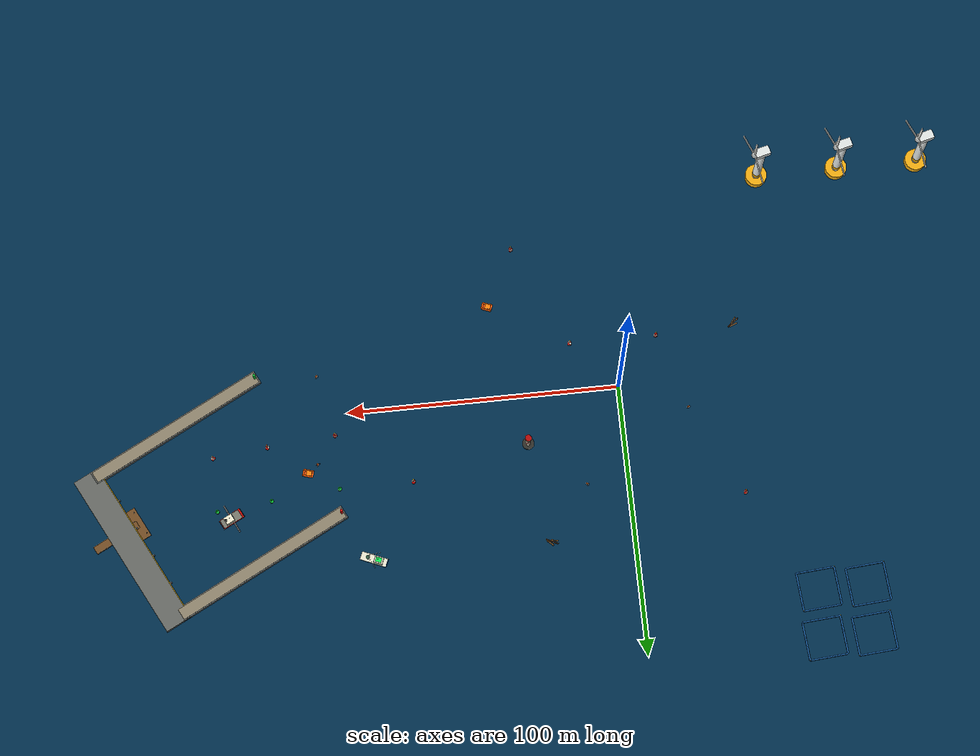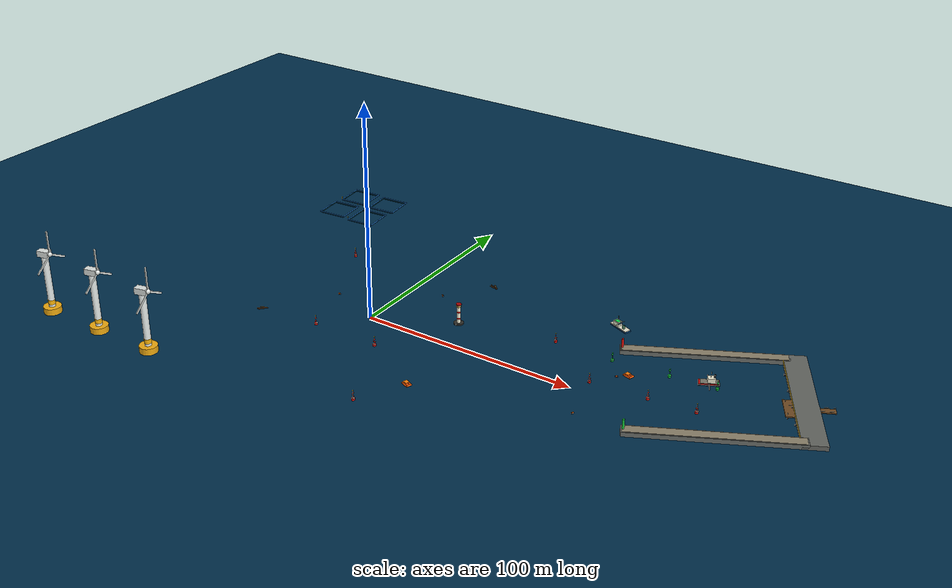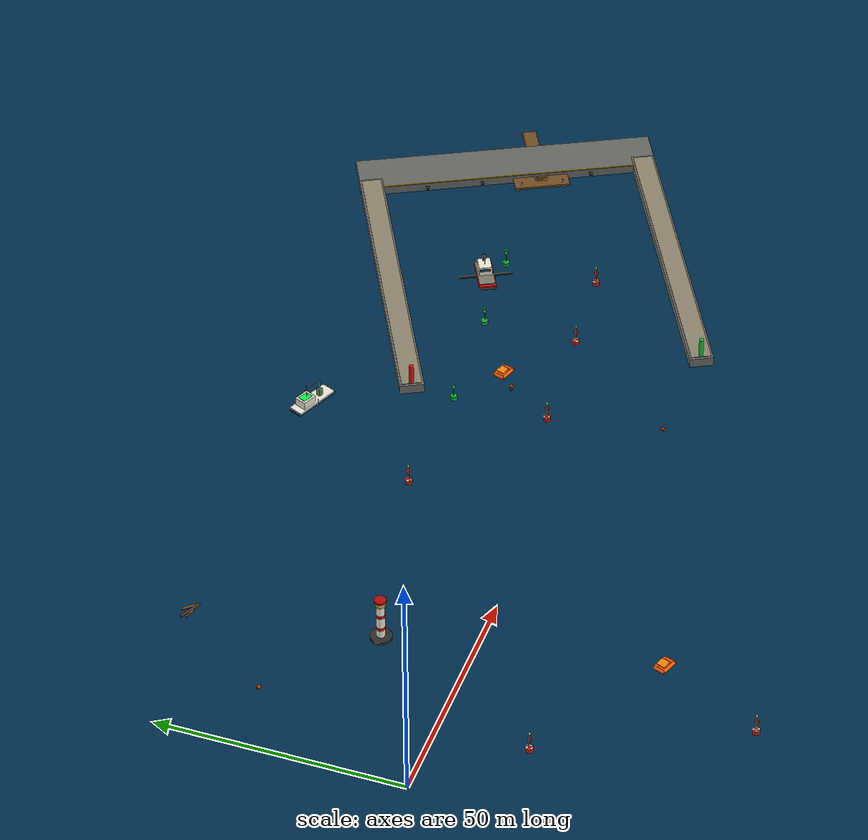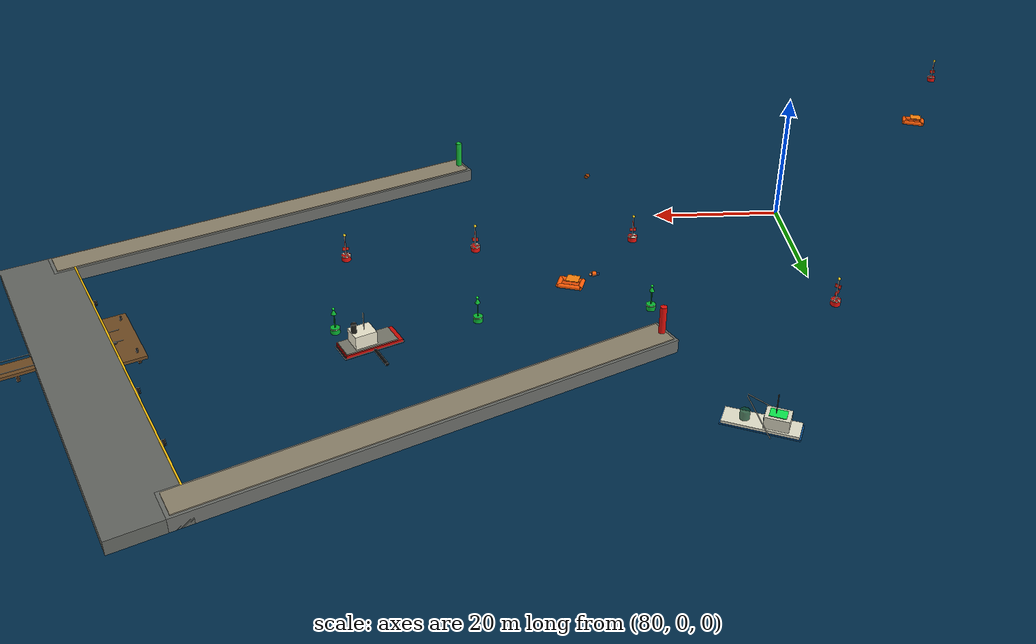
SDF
<sdf version="1.10">
 <world name="default">
  <plugin filename="gz-sim-physics-system" name="gz::sim::systems::Physics"/>
  <plugin filename="gz-sim-user-commands-system" name="gz::sim::systems::UserCommands"/>
  <plugin filename="gz-sim-scene-broadcaster-system" name="gz::sim::systems::SceneBroadcaster"/>
  <plugin filename="gz-sim-contact-system" name="gz::sim::systems::Contact"/>
  <plugin filename="gz-sim-imu-system" name="gz::sim::systems::Imu"/>
  <plugin filename="gz-sim-air-pressure-system" name="gz::sim::systems::AirPressure"/>
  <plugin filename="gz-sim-air-speed-system" name="gz::sim::systems::AirSpeed"/>
  <plugin filename="gz-sim-apply-link-wrench-system" name="gz::sim::systems::ApplyLinkWrench"/>
  <plugin filename="gz-sim-navsat-system" name="gz::sim::systems::NavSat"/>
  <plugin filename="gz-sim-magnetometer-system" name="gz::sim::systems::Magnetometer"/>
  <plugin filename="gz-sim-sensors-system" name="gz::sim::systems::Sensors">
   <render_engine>ogre2</render_engine>
  </plugin>
  <plugin filename="gz-sim-particle-emitter-system" name="gz::sim::systems::ParticleEmitter"/>
  <plugin filename="gz-sim-wind-effects-system" name="gz::sim::systems::WindEffects">
   <force_approximation_scaling_factor>0.35</force_approximation_scaling_factor>
   <horizontal>
    <magnitude>
     <time_for_rise>12</time_for_rise>
     <sin><amplitude_percent>0.08</amplitude_percent><period>45</period></sin>
     <noise type="gaussian"><mean>0</mean><stddev>0.0004</stddev></noise>
    </magnitude>
    <direction>
     <time_for_rise>20</time_for_rise>
     <sin><amplitude>6</amplitude><period>60</period></sin>
     <noise type="gaussian"><mean>0</mean><stddev>0.025</stddev></noise>
    </direction>
   </horizontal>
   <vertical><noise type="gaussian"><mean>0</mean><stddev>0.015</stddev></noise></vertical>
  </plugin>
  <physics type="ode">
   <max_step_size>0.0040000000000000001</max_step_size>
   <real_time_factor>1</real_time_factor>
   <real_time_update_rate>250</real_time_update_rate>
  </physics>
  <gravity>0 0 -9.8000000000000007</gravity>
  <magnetic_field>6.0000000000000002e-06 2.3e-05 -4.1999999999999998e-05</magnetic_field>
  <atmosphere type="adiabatic"/>
  <wind><linear_velocity>4 1.5 0</linear_velocity></wind>
  <scene>
   <grid>false</grid>
   <ambient>0.400000006 0.400000006 0.400000006 1</ambient>
   <background>0.699999988 0.699999988 0.699999988 1</background>
   <shadows>true</shadows>
   <fog>
    <type>linear</type>
    <color>0.72 0.78 0.8 1</color>
    <start>90</start>
    <end>420</end>
    <density>0.003</density>
   </fog>
  </scene>
  <spherical_coordinates>
   <surface_model>EARTH_WGS84</surface_model>
   <world_frame_orientation>ENU</world_frame_orientation>
   <latitude_deg>47.397971057728974</latitude_deg>
   <longitude_deg>8.5461637398001464</longitude_deg>
   <elevation>0</elevation>
   <heading_deg>0</heading_deg>
  </spherical_coordinates>
  <model name="ocean_plane">
   <static>true</static>
   <link name="ocean_link">
    <visual name="ocean_visual">
     <pose>0 0 -0.02 0 0 0</pose>
     <geometry><plane><normal>0 0 1</normal><size>1000 1000</size></plane></geometry>
     <material>
      <ambient>0 0.08 0.16 0.45</ambient>
      <diffuse>0 0.18 0.3 0.45</diffuse>
      <specular>0.03 0.05 0.06 1</specular>
     </material>
    </visual>
    <collision name="ocean_collision">
     <geometry><plane><normal>0 0 1</normal><size>1000 1000</size></plane></geometry>
    </collision>
    <inertial>
     <mass>1</mass>
     <inertia><ixx>1</ixx><ixy>0</ixy><ixz>0</ixz><iyy>1</iyy><iyz>0</iyz><izz>1</izz></inertia>
    </inertial>
   </link>
  </model>
  <include>
   <uri>model://medium_buoy</uri>
   <name>medium_buoy_west_channel</name>
   <pose>-42 44 0 0 0 0.25</pose>
  </include>
  <include>
   <uri>model://medium_buoy</uri>
   <name>medium_buoy_south_channel</name>
   <pose>34 -56 0 0 0 -0.35</pose>
  </include>
  <include>
   <uri>model://medium_buoy</uri>
   <name>medium_buoy_east_channel</name>
   <pose>78 28 0 0 0 0.7</pose>
  </include>
  <include>
   <uri>model://medium_buoy</uri>
   <name>medium_buoy_slalom_port</name>
   <pose>-16 -18 0 0 0 0</pose>
  </include>
  <include>
   <uri>model://medium_buoy</uri>
   <name>medium_buoy_slalom_starboard</name>
   <pose>16 -18 0 0 0 0</pose>
  </include>
  <include><uri>model://medium_buoy</uri><name>approach_port_outer</name><pose>105 8 0 0 0 0</pose></include>
  <include>
   <uri>model://green_channel_buoy</uri>
   <name>approach_starboard_outer</name>
   <pose>105 28 0 0 0 0</pose>
  </include>
  <include><uri>model://medium_buoy</uri><name>approach_port_middle</name><pose>130 10 0 0 0 0</pose></include>
  <include>
   <uri>model://green_channel_buoy</uri>
   <name>approach_starboard_middle</name>
   <pose>130 30 0 0 0 0</pose>
  </include>
  <include><uri>model://medium_buoy</uri><name>approach_port_inner</name><pose>150 12 0 0 0 0</pose></include>
  <include>
   <uri>model://green_channel_buoy</uri>
   <name>approach_starboard_inner</name>
   <pose>150 32 0 0 0 0</pose>
  </include>
  <include>
   <uri>model://aquaculture_cage</uri>
   <name>aquaculture_cage_01</name>
   <pose>-82 82 0 0 0 0.08</pose>
  </include>
  <include>
   <uri>model://aquaculture_cage</uri>
   <name>aquaculture_cage_02</name>
   <pose>-64 82 0 0 0 0.08</pose>
  </include>
  <include>
   <uri>model://aquaculture_cage</uri>
   <name>aquaculture_cage_03</name>
   <pose>-82 100 0 0 0 0.08</pose>
  </include>
  <include>
   <uri>model://aquaculture_cage</uri>
   <name>aquaculture_cage_04</name>
   <pose>-64 100 0 0 0 0.08</pose>
  </include>
  <include>
   <uri>model://floating_barrel</uri>
   <name>floating_barrel_01</name>
   <pose>-25 10 0 0 0 0.35</pose>
  </include>
  <include>
   <uri>model://floating_barrel</uri>
   <name>floating_barrel_02</name>
   <pose>15 35 0 0 0 -0.7</pose>
  </include>
  <include>
   <uri>model://floating_barrel</uri>
   <name>floating_barrel_03</name>
   <pose>110 -15 0 0 0 1.1</pose>
  </include>
  <include><uri>model://life_raft</uri><name>abandoned_life_raft</name><pose>45 -35 0 0 0 -0.35</pose></include>
  <include><uri>model://driftwood</uri><name>driftwood_01</name><pose>-45 -20 0 0 0 0.65</pose></include>
  <include><uri>model://driftwood</uri><name>driftwood_02</name><pose>30 55 0 0 0 -0.45</pose></include>
  <include>
   <uri>model://marina_pier</uri>
   <name>southwest_marina_pier</name>
   <pose>195 42 0 0 0 3.6166</pose>
  </include>
  <include>
   <uri>model://offshore_wind_turbine</uri>
   <name>wind_turbine_west</name>
   <pose>-120 -75 0 0 0 0.25</pose>
  </include>
  <include>
   <uri>model://offshore_wind_turbine</uri>
   <name>wind_turbine_center</name>
   <pose>-90 -75 0 0 0 0.25</pose>
  </include>
  <include>
   <uri>model://offshore_wind_turbine</uri>
   <name>wind_turbine_east</name>
   <pose>-60 -75 0 0 0 0.25</pose>
  </include>
  <include>
   <uri>model://harbor_breakwater</uri>
   <name>southwest_breakwater_harbor</name>
   <pose>180 42 0 0 0 3.6166</pose>
  </include>
  <include><uri>model://harbor_tug</uri><name>rescue_harbor_tug</name><pose>145 35 0 0 0 3.6166</pose></include>
  <include>
   <uri>model://fishing_boat</uri>
   <name>coastal_fishing_boat</name>
   <pose>95 55 0 0 0 -0.4</pose>
  </include>
  <include>
   <uri>model://person_overboard</uri>
   <name>rescue_casualty</name>
   <pose>112 18 0 0 0 0.2</pose>
  </include>
  <include><uri>model://life_raft</uri><name>rescue_life_raft</name><pose>116 21 0 0 0 -0.3</pose></include>
  <plugin filename="libDroneDeckFollower.so" name="gz::sim::systems::DroneDeckFollower">
   <boat_name>landing_boat</boat_name>
   <drone_name>x500_0</drone_name>
   <deck_offset>-0.92 0 0.43 0 0 0</deck_offset>
   <release_topic>/model/x500_0/release_from_deck</release_topic>
   <relock_duration>4.0</relock_duration>
   <release_vertical_speed>0.9</release_vertical_speed>
   <release_after>1000000</release_after>
   <initially_released>true</initially_released>
  </plugin>
  <model name="navigation_lighthouse">
   <static>true</static>
   <pose>35 18 0 0 0 0</pose>
   <link name="lighthouse_link">
    <collision name="base_collision">
     <pose>0 0 0.3 0 0 0</pose>
     <geometry><cylinder><radius>2.2</radius><length>0.6</length></cylinder></geometry>
    </collision>
    <visual name="base_visual">
     <pose>0 0 0.3 0 0 0</pose>
     <geometry><cylinder><radius>2.2</radius><length>0.6</length></cylinder></geometry>
     <material>
      <ambient>0.12 0.12 0.12 1</ambient>
      <diffuse>0.18 0.18 0.16 1</diffuse>
      <specular>0.05 0.05 0.05 1</specular>
     </material>
    </visual>
    <collision name="tower_collision">
     <pose>0 0 4.4 0 0 0</pose>
     <geometry><cylinder><radius>0.85</radius><length>8.2</length></cylinder></geometry>
    </collision>
    <visual name="tower_white_visual">
     <pose>0 0 4.4 0 0 0</pose>
     <geometry><cylinder><radius>0.85</radius><length>8.2</length></cylinder></geometry>
     <material>
      <ambient>0.85 0.83 0.76 1</ambient>
      <diffuse>0.95 0.93 0.84 1</diffuse>
      <specular>0.2 0.2 0.18 1</specular>
     </material>
    </visual>
    <visual name="red_band_lower_visual">
     <pose>0 0 2.7 0 0 0</pose>
     <geometry><cylinder><radius>0.88</radius><length>0.65</length></cylinder></geometry>
     <material>
      <ambient>0.55 0.04 0.03 1</ambient>
      <diffuse>0.85 0.06 0.04 1</diffuse>
      <specular>0.15 0.03 0.03 1</specular>
     </material>
    </visual>
    <visual name="red_band_upper_visual">
     <pose>0 0 5.8 0 0 0</pose>
     <geometry><cylinder><radius>0.88</radius><length>0.65</length></cylinder></geometry>
     <material>
      <ambient>0.55 0.04 0.03 1</ambient>
      <diffuse>0.85 0.06 0.04 1</diffuse>
      <specular>0.15 0.03 0.03 1</specular>
     </material>
    </visual>
    <visual name="lantern_room_visual">
     <pose>0 0 8.8 0 0 0</pose>
     <geometry><cylinder><radius>1.05</radius><length>0.9</length></cylinder></geometry>
     <material>
      <ambient>0.95 0.82 0.32 0.85</ambient>
      <diffuse>1 0.88 0.4 0.85</diffuse>
      <specular>1 0.95 0.7 1</specular>
     </material>
    </visual>
    <visual name="roof_visual">
     <pose>0 0 9.55 0 0 0</pose>
     <geometry><cylinder><radius>1.2</radius><length>0.45</length></cylinder></geometry>
     <material>
      <ambient>0.45 0.02 0.02 1</ambient>
      <diffuse>0.7 0.03 0.03 1</diffuse>
      <specular>0.18 0.04 0.04 1</specular>
     </material>
    </visual>
    <light name="beacon_light" type="point">
     <pose>0 0 8.95 0 0 0</pose>
     <cast_shadows>false</cast_shadows>
     <intensity>3</intensity>
     <diffuse>1 0.86 0.35 1</diffuse>
     <specular>1 0.9 0.55 1</specular>
     <attenuation>
      <range>80</range>
      <constant>0.6</constant>
      <linear>0.02</linear>
      <quadratic>0.001</quadratic>
     </attenuation>
    </light>
   </link>
  </model>
  <light name="directionallight" type="directional">
   <pose>3.6650413048508694 0.062467871162392719 2 0 0 0</pose>
   <intensity>1</intensity>
   <direction>0 0 -1</direction>
   <diffuse>0.800000012 0.800000012 0.800000012 1</diffuse>
   <specular>0.200000003 0.200000003 0.200000003 1</specular>
   <attenuation>
    <range>1000</range>
    <linear>0.01</linear>
    <constant>0.90000000000000002</constant>
    <quadratic>0.001</quadratic>
   </attenuation>
   <spot><inner_angle>0</inner_angle><outer_angle>0</outer_angle><falloff>0</falloff></spot>
  </light>
 </world>
</sdf>

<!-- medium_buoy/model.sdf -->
<sdf version="1.8">
  <model name="medium_buoy">
    <link name="body">
      <inertial>
        <mass>140</mass>
        <inertia><ixx>65</ixx><iyy>65</iyy><izz>22</izz></inertia>
      </inertial>
      <collision name="base_collision">
        <pose>0 0 0.45 0 0 0</pose>
        <geometry>
          <cylinder>
            <radius>0.7</radius>
            <length>0.9</length>
          </cylinder>
        </geometry>
      </collision>

      <collision name="mast_collision">
        <pose>0 0 2.55 0 0 0</pose>
        <geometry>
          <cylinder>
            <radius>0.11</radius>
            <length>3.3</length>
          </cylinder>
        </geometry>
      </collision>

      <collision name="daymark_lower_collision">
        <pose>0 0 2.0 0 0 0</pose>
        <geometry>
          <box>
            <size>1.05 0.12 0.65</size>
          </box>
        </geometry>
      </collision>

      <collision name="daymark_upper_collision">
        <pose>0 0 3.1 0 0 1.5708</pose>
        <geometry>
          <box>
            <size>1.05 0.12 0.65</size>
          </box>
        </geometry>
      </collision>

      <visual name="base_float">
        <pose>0 0 0.45 0 0 0</pose>
        <geometry>
          <cylinder>
            <radius>0.72</radius>
            <length>0.9</length>
          </cylinder>
        </geometry>
        <material>
          <ambient>0.65 0.05 0.04 1</ambient>
          <diffuse>0.92 0.07 0.05 1</diffuse>
          <specular>0.25 0.04 0.04 1</specular>
        </material>
      </visual>

      <visual name="white_band">
        <pose>0 0 0.82 0 0 0</pose>
        <geometry>
          <cylinder>
            <radius>0.73</radius>
            <length>0.16</length>
          </cylinder>
        </geometry>
        <material>
          <ambient>0.92 0.9 0.82 1</ambient>
          <diffuse>1 0.98 0.88 1</diffuse>
          <specular>0.45 0.45 0.4 1</specular>
        </material>
      </visual>

      <visual name="tower_mast">
        <pose>0 0 2.55 0 0 0</pose>
        <geometry>
          <cylinder>
            <radius>0.08</radius>
            <length>3.3</length>
          </cylinder>
        </geometry>
        <material>
          <ambient>0.04 0.04 0.04 1</ambient>
          <diffuse>0.06 0.06 0.06 1</diffuse>
          <specular>0.2 0.2 0.2 1</specular>
        </material>
      </visual>

      <visual name="daymark_lower">
        <pose>0 0 2.0 0 0 0</pose>
        <geometry>
          <box>
            <size>0.95 0.08 0.55</size>
          </box>
        </geometry>
        <material>
          <ambient>0.85 0.1 0.06 1</ambient>
          <diffuse>1 0.15 0.08 1</diffuse>
          <specular>0.3 0.05 0.03 1</specular>
        </material>
      </visual>

      <visual name="daymark_upper">
        <pose>0 0 3.1 0 0 1.5708</pose>
        <geometry>
          <box>
            <size>0.95 0.08 0.55</size>
          </box>
        </geometry>
        <material>
          <ambient>0.85 0.1 0.06 1</ambient>
          <diffuse>1 0.15 0.08 1</diffuse>
          <specular>0.3 0.05 0.03 1</specular>
        </material>
      </visual>

      <visual name="top_beacon">
        <pose>0 0 4.35 0 0 0</pose>
        <geometry>
          <sphere>
            <radius>0.22</radius>
          </sphere>
        </geometry>
        <material>
          <ambient>1 0.78 0.1 1</ambient>
          <diffuse>1 0.86 0.15 1</diffuse>
          <specular>1 0.9 0.35 1</specular>
        </material>
      </visual>

      <light name="buoy_light" type="point">
        <pose>0 0 4.35 0 0 0</pose>
        <cast_shadows>false</cast_shadows>
        <intensity>1.2</intensity>
        <diffuse>1 0.78 0.1 1</diffuse>
        <specular>1 0.86 0.25 1</specular>
        <attenuation>
          <range>25</range>
          <constant>0.7</constant>
          <linear>0.04</linear>
          <quadratic>0.002</quadratic>
        </attenuation>
      </light>
    </link>
    <plugin filename="libBoatWaveFollower.so" name="gz::sim::systems::BoatWaveFollower">
      <mean_z>0</mean_z><heave_amplitude>0.08</heave_amplitude>
      <roll_amplitude>0.045</roll_amplitude><pitch_amplitude>0.038</pitch_amplitude>
      <primary_frequency>0.9</primary_frequency><secondary_frequency>1.45</secondary_frequency>
      <wave_number_x>0.2</wave_number_x><wave_number_y>0.16</wave_number_y>
    </plugin>
  </model>
</sdf>

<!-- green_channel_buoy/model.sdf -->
<sdf version="1.10">
  <model name="green_channel_buoy">
    <link name="body">
      <inertial><mass>140</mass><inertia><ixx>65</ixx><iyy>65</iyy><izz>22</izz></inertia></inertial>
      <collision name="float_collision"><pose>0 0 0.45 0 0 0</pose><geometry><cylinder><radius>0.65</radius><length>0.9</length></cylinder></geometry></collision>
      <collision name="mast_collision"><pose>0 0 2.15 0 0 0</pose><geometry><cylinder><radius>0.1</radius><length>2.7</length></cylinder></geometry></collision>
      <visual name="float"><pose>0 0 0.45 0 0 0</pose><geometry><cylinder><radius>0.68</radius><length>0.9</length></cylinder></geometry><material><ambient>0.02 0.42 0.12 1</ambient><diffuse>0.03 0.72 0.2 1</diffuse><specular>0.2 0.3 0.2 1</specular></material></visual>
      <visual name="reflective_band"><pose>0 0 0.78 0 0 0</pose><geometry><cylinder><radius>0.69</radius><length>0.14</length></cylinder></geometry><material><ambient>0.85 0.88 0.75 1</ambient><diffuse>1 1 0.86 1</diffuse><emissive>0.15 0.15 0.1 1</emissive></material></visual>
      <visual name="mast"><pose>0 0 2.15 0 0 0</pose><geometry><cylinder><radius>0.075</radius><length>2.7</length></cylinder></geometry><material><ambient>0.02 0.25 0.07 1</ambient><diffuse>0.03 0.5 0.12 1</diffuse></material></visual>
      <visual name="topmark"><pose>0 0 3.45 0 0 0</pose><geometry><cone><radius>0.38</radius><length>0.75</length></cone></geometry><material><ambient>0.02 0.36 0.1 1</ambient><diffuse>0.03 0.68 0.18 1</diffuse></material></visual>
      <visual name="lantern"><pose>0 0 3.95 0 0 0</pose><geometry><sphere><radius>0.18</radius></sphere></geometry><material><ambient>0.08 0.8 0.2 1</ambient><diffuse>0.1 1 0.25 1</diffuse><emissive>0.05 0.8 0.16 1</emissive></material></visual>
      <light name="green_light" type="point"><pose>0 0 3.95 0 0 0</pose><cast_shadows>false</cast_shadows><intensity>1.4</intensity><diffuse>0.08 1 0.22 1</diffuse><specular>0.1 1 0.3 1</specular><attenuation><range>28</range><constant>0.7</constant><linear>0.04</linear><quadratic>0.002</quadratic></attenuation></light>
    </link>
    <plugin filename="libBoatWaveFollower.so" name="gz::sim::systems::BoatWaveFollower"><mean_z>0</mean_z><heave_amplitude>0.08</heave_amplitude><roll_amplitude>0.045</roll_amplitude><pitch_amplitude>0.038</pitch_amplitude><primary_frequency>0.9</primary_frequency><secondary_frequency>1.45</secondary_frequency><wave_number_x>0.2</wave_number_x><wave_number_y>0.16</wave_number_y></plugin>
  </model>
</sdf>

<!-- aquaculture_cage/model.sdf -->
<sdf version="1.10">
  <model name="aquaculture_cage">
    <link name="cage">
      <inertial><mass>450</mass><inertia><ixx>5500</ixx><iyy>5500</iyy><izz>8200</izz></inertia></inertial>
      <collision name="north_float_collision"><pose>0 7 0.25 0 1.5708 0</pose><geometry><cylinder><radius>0.3</radius><length>14</length></cylinder></geometry></collision>
      <collision name="south_float_collision"><pose>0 -7 0.25 0 1.5708 0</pose><geometry><cylinder><radius>0.3</radius><length>14</length></cylinder></geometry></collision>
      <collision name="east_float_collision"><pose>7 0 0.25 1.5708 0 0</pose><geometry><cylinder><radius>0.3</radius><length>14</length></cylinder></geometry></collision>
      <collision name="west_float_collision"><pose>-7 0 0.25 1.5708 0 0</pose><geometry><cylinder><radius>0.3</radius><length>14</length></cylinder></geometry></collision>
      <visual name="north_float"><pose>0 7 0.25 0 1.5708 0</pose><geometry><cylinder><radius>0.32</radius><length>14</length></cylinder></geometry><material><ambient>0.08 0.2 0.34 1</ambient><diffuse>0.1 0.38 0.65 1</diffuse><specular>0.3 0.35 0.4 1</specular></material></visual>
      <visual name="south_float"><pose>0 -7 0.25 0 1.5708 0</pose><geometry><cylinder><radius>0.32</radius><length>14</length></cylinder></geometry><material><ambient>0.08 0.2 0.34 1</ambient><diffuse>0.1 0.38 0.65 1</diffuse></material></visual>
      <visual name="east_float"><pose>7 0 0.25 1.5708 0 0</pose><geometry><cylinder><radius>0.32</radius><length>14</length></cylinder></geometry><material><ambient>0.08 0.2 0.34 1</ambient><diffuse>0.1 0.38 0.65 1</diffuse></material></visual>
      <visual name="west_float"><pose>-7 0 0.25 1.5708 0 0</pose><geometry><cylinder><radius>0.32</radius><length>14</length></cylinder></geometry><material><ambient>0.08 0.2 0.34 1</ambient><diffuse>0.1 0.38 0.65 1</diffuse></material></visual>
      <visual name="net_bottom"><pose>0 0 -3.8 0 0 0</pose><geometry><box><size>13.5 13.5 0.03</size></box></geometry><material><ambient>0.02 0.14 0.11 0.35</ambient><diffuse>0.03 0.3 0.22 0.35</diffuse></material></visual>
      <visual name="net_north"><pose>0 6.75 -1.8 0 0 0</pose><geometry><box><size>13.5 0.03 4</size></box></geometry><material><ambient>0.02 0.16 0.12 0.38</ambient><diffuse>0.03 0.34 0.24 0.38</diffuse></material></visual>
      <visual name="net_south"><pose>0 -6.75 -1.8 0 0 0</pose><geometry><box><size>13.5 0.03 4</size></box></geometry><material><ambient>0.02 0.16 0.12 0.38</ambient><diffuse>0.03 0.34 0.24 0.38</diffuse></material></visual>
      <visual name="net_east"><pose>6.75 0 -1.8 0 0 0</pose><geometry><box><size>0.03 13.5 4</size></box></geometry><material><ambient>0.02 0.16 0.12 0.38</ambient><diffuse>0.03 0.34 0.24 0.38</diffuse></material></visual>
      <visual name="net_west"><pose>-6.75 0 -1.8 0 0 0</pose><geometry><box><size>0.03 13.5 4</size></box></geometry><material><ambient>0.02 0.16 0.12 0.38</ambient><diffuse>0.03 0.34 0.24 0.38</diffuse></material></visual>
      <visual name="corner_marker_ne"><pose>7 7 1.05 0 0 0</pose><geometry><cylinder><radius>0.09</radius><length>1.5</length></cylinder></geometry><material><ambient>0.85 0.55 0.02 1</ambient><diffuse>1 0.72 0.05 1</diffuse></material></visual>
      <visual name="corner_marker_sw"><pose>-7 -7 1.05 0 0 0</pose><geometry><cylinder><radius>0.09</radius><length>1.5</length></cylinder></geometry><material><ambient>0.85 0.55 0.02 1</ambient><diffuse>1 0.72 0.05 1</diffuse></material></visual>
      <light name="cage_light_ne" type="point"><pose>7 7 1.8 0 0 0</pose><cast_shadows>false</cast_shadows><intensity>0.8</intensity><diffuse>1 0.72 0.08 1</diffuse><attenuation><range>18</range><constant>0.8</constant><linear>0.06</linear><quadratic>0.003</quadratic></attenuation></light>
      <light name="cage_light_sw" type="point"><pose>-7 -7 1.8 0 0 0</pose><cast_shadows>false</cast_shadows><intensity>0.8</intensity><diffuse>1 0.72 0.08 1</diffuse><attenuation><range>18</range><constant>0.8</constant><linear>0.06</linear><quadratic>0.003</quadratic></attenuation></light>
    </link>
    <plugin filename="libBoatWaveFollower.so" name="gz::sim::systems::BoatWaveFollower"><mean_z>0</mean_z><heave_amplitude>0.05</heave_amplitude><roll_amplitude>0.012</roll_amplitude><pitch_amplitude>0.012</pitch_amplitude><primary_frequency>0.75</primary_frequency><secondary_frequency>1.2</secondary_frequency><wave_number_x>0.12</wave_number_x><wave_number_y>0.1</wave_number_y></plugin>
  </model>
</sdf>

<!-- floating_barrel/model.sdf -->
<sdf version="1.10"><model name="floating_barrel"><link name="barrel">
  <inertial><mass>35</mass><inertia><ixx>4</ixx><iyy>8</iyy><izz>8</izz></inertia></inertial>
  <collision name="collision"><pose>0 0 0 0 1.5708 0</pose><geometry><cylinder><radius>0.32</radius><length>0.9</length></cylinder></geometry></collision>
  <visual name="body"><pose>0 0 0 0 1.5708 0</pose><geometry><cylinder><radius>0.33</radius><length>0.9</length></cylinder></geometry><material><ambient>0.42 0.18 0.03 1</ambient><diffuse>0.72 0.3 0.04 1</diffuse><specular>0.24 0.18 0.12 1</specular></material></visual>
  <visual name="band_a"><pose>-0.34 0 0 0 1.5708 0</pose><geometry><cylinder><radius>0.345</radius><length>0.07</length></cylinder></geometry><material><ambient>0.09 0.09 0.08 1</ambient><diffuse>0.18 0.18 0.16 1</diffuse></material></visual>
  <visual name="band_b"><pose>0.34 0 0 0 1.5708 0</pose><geometry><cylinder><radius>0.345</radius><length>0.07</length></cylinder></geometry><material><ambient>0.09 0.09 0.08 1</ambient><diffuse>0.18 0.18 0.16 1</diffuse></material></visual>
  <visual name="oil_stain"><pose>0 0.05 -0.28 0 0 0</pose><geometry><ellipsoid><radii>0.75 0.5 0.025</radii></ellipsoid></geometry><material><ambient>0.015 0.02 0.025 0.55</ambient><diffuse>0.025 0.035 0.04 0.55</diffuse><specular>0.7 0.65 0.6 1</specular></material></visual>
  </link><plugin filename="libBoatWaveFollower.so" name="gz::sim::systems::BoatWaveFollower"><mean_z>0.18</mean_z><heave_amplitude>0.1</heave_amplitude><roll_amplitude>0.18</roll_amplitude><pitch_amplitude>0.15</pitch_amplitude><primary_frequency>1.05</primary_frequency><secondary_frequency>1.7</secondary_frequency></plugin></model></sdf>

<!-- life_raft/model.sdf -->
<sdf version="1.10"><model name="life_raft"><link name="raft">
  <inertial><mass>85</mass><inertia><ixx>70</ixx><iyy>95</iyy><izz>130</izz></inertia></inertial>
  <collision name="collision"><pose>0 0 0.28 0 0 0</pose><geometry><box><size>3.6 2.4 0.55</size></box></geometry></collision>
  <visual name="floor"><pose>0 0 0.16 0 0 0</pose><geometry><box><size>3.1 1.9 0.18</size></box></geometry><material><ambient>0.55 0.15 0.01 1</ambient><diffuse>0.92 0.3 0.015 1</diffuse></material></visual>
  <visual name="tube_front"><pose>1.65 0 0.38 1.5708 0 0</pose><geometry><cylinder><radius>0.34</radius><length>2.4</length></cylinder></geometry><material><ambient>0.82 0.2 0.01 1</ambient><diffuse>1 0.36 0.02 1</diffuse><specular>0.25 0.2 0.15 1</specular></material></visual>
  <visual name="tube_rear"><pose>-1.65 0 0.38 1.5708 0 0</pose><geometry><cylinder><radius>0.34</radius><length>2.4</length></cylinder></geometry><material><ambient>0.82 0.2 0.01 1</ambient><diffuse>1 0.36 0.02 1</diffuse></material></visual>
  <visual name="tube_left"><pose>0 1.05 0.38 0 1.5708 0</pose><geometry><cylinder><radius>0.34</radius><length>3.3</length></cylinder></geometry><material><ambient>0.82 0.2 0.01 1</ambient><diffuse>1 0.36 0.02 1</diffuse></material></visual>
  <visual name="tube_right"><pose>0 -1.05 0.38 0 1.5708 0</pose><geometry><cylinder><radius>0.34</radius><length>3.3</length></cylinder></geometry><material><ambient>0.82 0.2 0.01 1</ambient><diffuse>1 0.36 0.02 1</diffuse></material></visual>
  <visual name="canopy"><pose>-0.35 0 1.25 0 0 0</pose><geometry><box><size>1.9 1.8 0.08</size></box></geometry><material><ambient>0.85 0.32 0.02 0.9</ambient><diffuse>1 0.52 0.04 0.9</diffuse></material></visual>
  <visual name="canopy_pole_left"><pose>-0.35 0.78 0.85 0 0 0</pose><geometry><cylinder><radius>0.035</radius><length>0.9</length></cylinder></geometry><material><ambient>0.8 0.8 0.75 1</ambient><diffuse>0.95 0.95 0.9 1</diffuse></material></visual>
  <visual name="canopy_pole_right"><pose>-0.35 -0.78 0.85 0 0 0</pose><geometry><cylinder><radius>0.035</radius><length>0.9</length></cylinder></geometry><material><ambient>0.8 0.8 0.75 1</ambient><diffuse>0.95 0.95 0.9 1</diffuse></material></visual>
  </link><plugin filename="libBoatWaveFollower.so" name="gz::sim::systems::BoatWaveFollower"><mean_z>0.12</mean_z><heave_amplitude>0.12</heave_amplitude><roll_amplitude>0.09</roll_amplitude><pitch_amplitude>0.075</pitch_amplitude><primary_frequency>0.9</primary_frequency><secondary_frequency>1.45</secondary_frequency></plugin></model></sdf>

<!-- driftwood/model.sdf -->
<sdf version="1.10"><model name="driftwood"><link name="timber">
  <inertial><mass>55</mass><inertia><ixx>6</ixx><iyy>70</iyy><izz>72</izz></inertia></inertial>
  <collision name="log_collision"><pose>0 0 0 0 1.5708 0</pose><geometry><cylinder><radius>0.22</radius><length>4.8</length></cylinder></geometry></collision>
  <collision name="plank_collision"><pose>0.5 0.7 0.08 0.05 0.08 -0.3</pose><geometry><box><size>3.2 0.48 0.16</size></box></geometry></collision>
  <visual name="log"><pose>0 0 0 0 1.5708 0</pose><geometry><cylinder><radius>0.23</radius><length>4.8</length></cylinder></geometry><material><ambient>0.19 0.11 0.055 1</ambient><diffuse>0.36 0.21 0.09 1</diffuse><specular>0.05 0.04 0.03 1</specular></material></visual>
  <visual name="bark_strip"><pose>0 0.17 0.12 0 0 0</pose><geometry><box><size>3.7 0.09 0.06</size></box></geometry><material><ambient>0.08 0.05 0.025 1</ambient><diffuse>0.15 0.09 0.04 1</diffuse></material></visual>
  <visual name="plank_a"><pose>0.5 0.7 0.08 0.05 0.08 -0.3</pose><geometry><box><size>3.2 0.48 0.16</size></box></geometry><material><ambient>0.27 0.18 0.09 1</ambient><diffuse>0.5 0.34 0.16 1</diffuse></material></visual>
  <visual name="plank_b"><pose>-0.6 -0.65 0.05 -0.04 0.06 0.22</pose><geometry><box><size>2.6 0.42 0.14</size></box></geometry><material><ambient>0.24 0.16 0.08 1</ambient><diffuse>0.44 0.29 0.13 1</diffuse></material></visual>
  </link><plugin filename="libBoatWaveFollower.so" name="gz::sim::systems::BoatWaveFollower"><mean_z>0.1</mean_z><heave_amplitude>0.09</heave_amplitude><roll_amplitude>0.13</roll_amplitude><pitch_amplitude>0.1</pitch_amplitude><primary_frequency>1</primary_frequency><secondary_frequency>1.55</secondary_frequency></plugin></model></sdf>

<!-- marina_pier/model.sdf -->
<sdf version="1.10"><model name="marina_pier"><static>true</static><link name="pier">
  <collision name="walkway_collision"><pose>9 0 1 0 0 0</pose><geometry><box><size>18 3 0.45</size></box></geometry></collision>
  <collision name="head_collision"><pose>18 0 1 0 0 0</pose><geometry><box><size>4 12 0.45</size></box></geometry></collision>
  <visual name="walkway"><pose>9 0 1 0 0 0</pose><geometry><box><size>18 3 0.45</size></box></geometry><material><ambient>0.23 0.15 0.075 1</ambient><diffuse>0.45 0.3 0.14 1</diffuse><specular>0.05 0.04 0.03 1</specular></material></visual>
  <visual name="head"><pose>18 0 1 0 0 0</pose><geometry><box><size>4 12 0.45</size></box></geometry><material><ambient>0.23 0.15 0.075 1</ambient><diffuse>0.45 0.3 0.14 1</diffuse></material></visual>
  <visual name="pile_a"><pose>4 -1.25 -0.8 0 0 0</pose><geometry><cylinder><radius>0.22</radius><length>4</length></cylinder></geometry><material><ambient>0.12 0.08 0.04 1</ambient><diffuse>0.24 0.15 0.07 1</diffuse></material></visual>
  <visual name="pile_b"><pose>10 1.25 -0.8 0 0 0</pose><geometry><cylinder><radius>0.22</radius><length>4</length></cylinder></geometry><material><ambient>0.12 0.08 0.04 1</ambient><diffuse>0.24 0.15 0.07 1</diffuse></material></visual>
  <visual name="pile_c"><pose>16 -1.25 -0.8 0 0 0</pose><geometry><cylinder><radius>0.22</radius><length>4</length></cylinder></geometry><material><ambient>0.12 0.08 0.04 1</ambient><diffuse>0.24 0.15 0.07 1</diffuse></material></visual>
  <visual name="pile_d"><pose>19 5 -0.8 0 0 0</pose><geometry><cylinder><radius>0.24</radius><length>4</length></cylinder></geometry><material><ambient>0.12 0.08 0.04 1</ambient><diffuse>0.24 0.15 0.07 1</diffuse></material></visual>
  <visual name="pile_e"><pose>19 -5 -0.8 0 0 0</pose><geometry><cylinder><radius>0.24</radius><length>4</length></cylinder></geometry><material><ambient>0.12 0.08 0.04 1</ambient><diffuse>0.24 0.15 0.07 1</diffuse></material></visual>
  <visual name="rail_left"><pose>9 1.42 1.75 0 0 0</pose><geometry><box><size>18 0.07 0.08</size></box></geometry><material><ambient>0.45 0.46 0.45 1</ambient><diffuse>0.7 0.72 0.7 1</diffuse><specular>0.4 0.4 0.4 1</specular></material></visual>
  <visual name="rail_right"><pose>9 -1.42 1.75 0 0 0</pose><geometry><box><size>18 0.07 0.08</size></box></geometry><material><ambient>0.45 0.46 0.45 1</ambient><diffuse>0.7 0.72 0.7 1</diffuse></material></visual>
  <visual name="bollard_n"><pose>19 4.5 1.5 0 0 0</pose><geometry><cylinder><radius>0.16</radius><length>0.55</length></cylinder></geometry><material><ambient>0.08 0.08 0.08 1</ambient><diffuse>0.15 0.15 0.15 1</diffuse></material></visual>
  <visual name="bollard_s"><pose>19 -4.5 1.5 0 0 0</pose><geometry><cylinder><radius>0.16</radius><length>0.55</length></cylinder></geometry><material><ambient>0.08 0.08 0.08 1</ambient><diffuse>0.15 0.15 0.15 1</diffuse></material></visual>
  <light name="pier_light_n" type="point"><pose>19 5 2.2 0 0 0</pose><cast_shadows>false</cast_shadows><intensity>1</intensity><diffuse>1 0.75 0.2 1</diffuse><attenuation><range>22</range><constant>0.8</constant><linear>0.05</linear><quadratic>0.003</quadratic></attenuation></light>
  <light name="pier_light_s" type="point"><pose>19 -5 2.2 0 0 0</pose><cast_shadows>false</cast_shadows><intensity>1</intensity><diffuse>1 0.75 0.2 1</diffuse><attenuation><range>22</range><constant>0.8</constant><linear>0.05</linear><quadratic>0.003</quadratic></attenuation></light>
  </link></model></sdf>

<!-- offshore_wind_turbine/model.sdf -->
<sdf version="1.10">
  <model name="offshore_wind_turbine">
    <link name="tower">
      <inertial><mass>80000</mass><inertia><ixx>8000000</ixx><iyy>8000000</iyy><izz>400000</izz></inertia></inertial>
      <collision name="foundation_collision"><pose>0 0 1.5 0 0 0</pose><geometry><cylinder><radius>4</radius><length>3</length></cylinder></geometry></collision>
      <collision name="tower_collision"><pose>0 0 15.5 0 0 0</pose><geometry><cylinder><radius>1.45</radius><length>26</length></cylinder></geometry></collision>
      <visual name="foundation"><pose>0 0 1.5 0 0 0</pose><geometry><cylinder><radius>4</radius><length>3</length></cylinder></geometry><material><ambient>0.72 0.5 0.04 1</ambient><diffuse>0.95 0.68 0.07 1</diffuse><specular>0.12 0.12 0.1 1</specular></material></visual>
      <visual name="tower_white"><pose>0 0 15.5 0 0 0</pose><geometry><cylinder><radius>1.5</radius><length>26</length></cylinder></geometry><material><ambient>0.75 0.77 0.76 1</ambient><diffuse>0.92 0.94 0.93 1</diffuse><specular>0.3 0.3 0.3 1</specular></material></visual>
      <visual name="navigation_band"><pose>0 0 5.2 0 0 0</pose><geometry><cylinder><radius>1.55</radius><length>2.1</length></cylinder></geometry><material><ambient>0.85 0.58 0.02 1</ambient><diffuse>1 0.72 0.04 1</diffuse></material></visual>
      <visual name="nacelle"><pose>0 0 29 0 0 0</pose><geometry><box><size>5.5 3.2 2.8</size></box></geometry><material><ambient>0.7 0.72 0.71 1</ambient><diffuse>0.88 0.9 0.89 1</diffuse><specular>0.3 0.3 0.3 1</specular></material></visual>
      <light name="aviation_light" type="point"><pose>0 0 31 0 0 0</pose><cast_shadows>false</cast_shadows><intensity>2</intensity><diffuse>1 0.03 0.02 1</diffuse><specular>1 0.08 0.04 1</specular><attenuation><range>70</range><constant>0.6</constant><linear>0.025</linear><quadratic>0.001</quadratic></attenuation></light>
    </link>
    <link name="rotor">
      <pose>2.9 0 29 0 0 0</pose>
      <inertial><mass>1800</mass><inertia><ixx>18000</ixx><iyy>36000</iyy><izz>36000</izz></inertia></inertial>
      <visual name="hub"><geometry><sphere><radius>1.15</radius></sphere></geometry><material><ambient>0.72 0.74 0.73 1</ambient><diffuse>0.9 0.92 0.91 1</diffuse></material></visual>
      <visual name="blade_1"><pose>0 0 5.8 0 0 0</pose><geometry><box><size>0.35 0.9 10.5</size></box></geometry><material><ambient>0.78 0.8 0.79 1</ambient><diffuse>0.96 0.97 0.95 1</diffuse><specular>0.25 0.25 0.25 1</specular></material></visual>
      <visual name="blade_2"><pose>0 -5.02 -2.9 2.0944 0 0</pose><geometry><box><size>0.35 0.9 10.5</size></box></geometry><material><ambient>0.78 0.8 0.79 1</ambient><diffuse>0.96 0.97 0.95 1</diffuse></material></visual>
      <visual name="blade_3"><pose>0 5.02 -2.9 4.18879 0 0</pose><geometry><box><size>0.35 0.9 10.5</size></box></geometry><material><ambient>0.78 0.8 0.79 1</ambient><diffuse>0.96 0.97 0.95 1</diffuse></material></visual>
    </link>
    <joint name="tower_world_joint" type="fixed"><parent>world</parent><child>tower</child></joint>
    <joint name="rotor_joint" type="revolute">
      <parent>tower</parent><child>rotor</child>
      <axis><xyz>1 0 0</xyz><limit><lower>-1.79769e+308</lower><upper>1.79769e+308</upper><velocity>2</velocity></limit></axis>
    </joint>
    <plugin filename="gz-sim-joint-controller-system" name="gz::sim::systems::JointController"><joint_name>rotor_joint</joint_name><initial_velocity>0.55</initial_velocity></plugin>
  </model>
</sdf>

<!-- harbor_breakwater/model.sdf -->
<sdf version="1.10"><model name="harbor_breakwater"><static>true</static><link name="harbor">
  <collision name="north_arm_collision"><pose>35 30 1 0 0 0</pose><geometry><box><size>70 5 2</size></box></geometry></collision>
  <collision name="south_arm_collision"><pose>35 -30 1 0 0 0</pose><geometry><box><size>70 5 2</size></box></geometry></collision>
  <collision name="quay_collision"><pose>-2 0 1 0 0 0</pose><geometry><box><size>10 65 2</size></box></geometry></collision>
  <visual name="north_arm"><pose>35 30 1 0 0 0</pose><geometry><box><size>70 5 2</size></box></geometry><material><ambient>0.27 0.28 0.27 1</ambient><diffuse>0.43 0.44 0.42 1</diffuse><specular>0.06 0.06 0.06 1</specular></material></visual>
  <visual name="south_arm"><pose>35 -30 1 0 0 0</pose><geometry><box><size>70 5 2</size></box></geometry><material><ambient>0.27 0.28 0.27 1</ambient><diffuse>0.43 0.44 0.42 1</diffuse></material></visual>
  <visual name="quay"><pose>-2 0 1 0 0 0</pose><geometry><box><size>10 65 2</size></box></geometry><material><ambient>0.24 0.25 0.24 1</ambient><diffuse>0.4 0.41 0.39 1</diffuse></material></visual>
  <visual name="north_walkway"><pose>35 30 2.08 0 0 0</pose><geometry><box><size>69 4.2 0.16</size></box></geometry><material><ambient>0.38 0.35 0.29 1</ambient><diffuse>0.56 0.52 0.43 1</diffuse></material></visual>
  <visual name="south_walkway"><pose>35 -30 2.08 0 0 0</pose><geometry><box><size>69 4.2 0.16</size></box></geometry><material><ambient>0.38 0.35 0.29 1</ambient><diffuse>0.56 0.52 0.43 1</diffuse></material></visual>
  <visual name="quay_hazard_line"><pose>3.05 0 2.08 0 0 0</pose><geometry><box><size>0.25 62 0.12</size></box></geometry><material><ambient>0.95 0.67 0.02 1</ambient><diffuse>1 0.78 0.04 1</diffuse></material></visual>
  <visual name="north_beacon_tower"><pose>69 30 4.2 0 0 0</pose><geometry><cylinder><radius>0.48</radius><length>4.2</length></cylinder></geometry><material><ambient>0.06 0.42 0.13 1</ambient><diffuse>0.08 0.75 0.22 1</diffuse></material></visual>
  <visual name="south_beacon_tower"><pose>69 -30 4.2 0 0 0</pose><geometry><cylinder><radius>0.48</radius><length>4.2</length></cylinder></geometry><material><ambient>0.58 0.04 0.025 1</ambient><diffuse>0.9 0.06 0.035 1</diffuse></material></visual>
  <visual name="fender_01"><pose>3.2 18 1 0 1.5708 0</pose><geometry><cylinder><radius>0.42</radius><length>1.2</length></cylinder></geometry><material><ambient>0.02 0.02 0.02 1</ambient><diffuse>0.045 0.045 0.045 1</diffuse></material></visual>
  <visual name="fender_02"><pose>3.2 6 1 0 1.5708 0</pose><geometry><cylinder><radius>0.42</radius><length>1.2</length></cylinder></geometry><material><ambient>0.02 0.02 0.02 1</ambient><diffuse>0.045 0.045 0.045 1</diffuse></material></visual>
  <visual name="fender_03"><pose>3.2 -6 1 0 1.5708 0</pose><geometry><cylinder><radius>0.42</radius><length>1.2</length></cylinder></geometry><material><ambient>0.02 0.02 0.02 1</ambient><diffuse>0.045 0.045 0.045 1</diffuse></material></visual>
  <visual name="fender_04"><pose>3.2 -18 1 0 1.5708 0</pose><geometry><cylinder><radius>0.42</radius><length>1.2</length></cylinder></geometry><material><ambient>0.02 0.02 0.02 1</ambient><diffuse>0.045 0.045 0.045 1</diffuse></material></visual>
  <light name="green_entrance_light" type="point"><pose>69 30 6.4 0 0 0</pose><cast_shadows>false</cast_shadows><intensity>2</intensity><diffuse>0.05 1 0.2 1</diffuse><attenuation><range>55</range><constant>0.7</constant><linear>0.03</linear><quadratic>0.001</quadratic></attenuation></light>
  <light name="red_entrance_light" type="point"><pose>69 -30 6.4 0 0 0</pose><cast_shadows>false</cast_shadows><intensity>2</intensity><diffuse>1 0.05 0.025 1</diffuse><attenuation><range>55</range><constant>0.7</constant><linear>0.03</linear><quadratic>0.001</quadratic></attenuation></light>
  </link></model></sdf>

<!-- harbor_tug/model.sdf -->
<sdf version="1.10"><model name="harbor_tug"><pose>0 0 0.55 0 0 0</pose><link name="hull">
  <enable_wind>true</enable_wind><inertial><mass>620</mass><inertia><ixx>520</ixx><iyy>2400</iyy><izz>2700</izz></inertia></inertial>
  <collision name="hull_collision"><geometry><box><size>9 3.8 1.15</size></box></geometry></collision>
  <visual name="lower_hull"><pose>0 0 -0.25 0 0 0</pose><geometry><box><size>8.8 3.55 0.72</size></box></geometry><material><ambient>0.04 0.04 0.045 1</ambient><diffuse>0.08 0.09 0.1 1</diffuse><specular>0.2 0.2 0.2 1</specular></material></visual>
  <visual name="red_freeboard"><pose>0 0 0.28 0 0 0</pose><geometry><box><size>8.4 3.7 0.42</size></box></geometry><material><ambient>0.55 0.025 0.015 1</ambient><diffuse>0.82 0.045 0.025 1</diffuse></material></visual>
  <visual name="deck"><pose>-0.3 0 0.58 0 0 0</pose><geometry><box><size>7.6 3.4 0.18</size></box></geometry><material><ambient>0.3 0.3 0.27 1</ambient><diffuse>0.48 0.48 0.43 1</diffuse></material></visual>
  <visual name="wheelhouse"><pose>-1 0 1.65 0 0 0</pose><geometry><box><size>3.2 2.7 2</size></box></geometry><material><ambient>0.78 0.76 0.68 1</ambient><diffuse>0.94 0.92 0.82 1</diffuse></material></visual>
  <visual name="front_windows"><pose>0.62 0 1.92 0 0.15 0</pose><geometry><box><size>0.05 2.25 0.72</size></box></geometry><material><ambient>0.015 0.07 0.11 0.85</ambient><diffuse>0.025 0.2 0.32 0.85</diffuse><specular>0.8 0.9 1 1</specular></material></visual>
  <visual name="funnel"><pose>-2.2 0 3.1 0 0 0</pose><geometry><cylinder><radius>0.38</radius><length>1.8</length></cylinder></geometry><material><ambient>0.06 0.06 0.055 1</ambient><diffuse>0.12 0.12 0.1 1</diffuse></material></visual>
  <visual name="mast"><pose>-0.7 0 3.8 0 0 0</pose><geometry><cylinder><radius>0.07</radius><length>3</length></cylinder></geometry><material><ambient>0.65 0.65 0.6 1</ambient><diffuse>0.86 0.86 0.8 1</diffuse></material></visual>
  <visual name="port_fender"><pose>0 1.95 0.1 1.5708 0 0</pose><geometry><cylinder><radius>0.25</radius><length>7.5</length></cylinder></geometry><material><ambient>0.015 0.015 0.015 1</ambient><diffuse>0.035 0.035 0.035 1</diffuse></material></visual>
  <visual name="starboard_fender"><pose>0 -1.95 0.1 1.5708 0 0</pose><geometry><cylinder><radius>0.25</radius><length>7.5</length></cylinder></geometry><material><ambient>0.015 0.015 0.015 1</ambient><diffuse>0.035 0.035 0.035 1</diffuse></material></visual>
  <light name="port_light" type="point"><pose>0 1.6 3.5 0 0 0</pose><cast_shadows>false</cast_shadows><intensity>0.8</intensity><diffuse>1 0.04 0.02 1</diffuse><attenuation><range>20</range><constant>0.8</constant><linear>0.05</linear><quadratic>0.003</quadratic></attenuation></light>
  <light name="starboard_light" type="point"><pose>0 -1.6 3.5 0 0 0</pose><cast_shadows>false</cast_shadows><intensity>0.8</intensity><diffuse>0.03 1 0.16 1</diffuse><attenuation><range>20</range><constant>0.8</constant><linear>0.05</linear><quadratic>0.003</quadratic></attenuation></light>
  <particle_emitter name="foam_wake" type="box"><pose>-4.8 0 -0.15 0 -1.5708 0</pose><emitting>true</emitting><size>0.2 2.4 0.3</size><particle_size>0.35 0.35 0.08</particle_size><lifetime>4.5</lifetime><min_velocity>0.7</min_velocity><max_velocity>1.3</max_velocity><scale_rate>0.65</scale_rate><rate>36</rate><color_start>0.88 0.96 1 0.75</color_start><color_end>0.75 0.9 0.96 0</color_end><particle_scatter_ratio>0.15</particle_scatter_ratio></particle_emitter>
  </link>
  <plugin filename="gz-sim-velocity-control-system" name="gz::sim::systems::VelocityControl"><initial_linear>1.15 0 0</initial_linear><initial_angular>0 0 0.012</initial_angular><topic>/model/harbor_tug/cmd_vel</topic></plugin>
  <plugin filename="libBoatWaveFollower.so" name="gz::sim::systems::BoatWaveFollower"><mean_z>0.58</mean_z><heave_amplitude>0.07</heave_amplitude><roll_amplitude>0.035</roll_amplitude><pitch_amplitude>0.03</pitch_amplitude><primary_frequency>0.95</primary_frequency><secondary_frequency>1.5</secondary_frequency></plugin>
  </model></sdf>

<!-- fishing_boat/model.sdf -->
<sdf version="1.10"><model name="fishing_boat"><pose>0 0 0.48 0 0 0</pose><link name="hull">
  <enable_wind>true</enable_wind><inertial><mass>420</mass><inertia><ixx>360</ixx><iyy>2100</iyy><izz>2250</izz></inertia></inertial>
  <collision name="hull_collision"><geometry><box><size>10.5 3.2 1</size></box></geometry></collision>
  <visual name="blue_hull"><pose>0 0 -0.2 0 0 0</pose><geometry><box><size>10.2 3 0.68</size></box></geometry><material><ambient>0.025 0.16 0.3 1</ambient><diffuse>0.04 0.32 0.58 1</diffuse><specular>0.14 0.2 0.25 1</specular></material></visual>
  <visual name="white_freeboard"><pose>0 0 0.3 0 0 0</pose><geometry><box><size>9.8 3.1 0.38</size></box></geometry><material><ambient>0.76 0.75 0.68 1</ambient><diffuse>0.92 0.91 0.82 1</diffuse></material></visual>
  <visual name="wheelhouse"><pose>-1.9 0 1.35 0 0 0</pose><geometry><box><size>3.2 2.5 1.7</size></box></geometry><material><ambient>0.74 0.73 0.66 1</ambient><diffuse>0.9 0.89 0.8 1</diffuse></material></visual>
  <visual name="window"><pose>-0.28 0 1.62 0 0.1 0</pose><geometry><box><size>0.05 2.05 0.62</size></box></geometry><material><ambient>0.015 0.08 0.13 0.85</ambient><diffuse>0.025 0.22 0.38 0.85</diffuse><specular>0.8 0.9 1 1</specular></material></visual>
  <visual name="neutral_identity_roof"><pose>-1.9 0 2.24 0 0 0</pose><geometry><box><size>2.2 1.65 0.12</size></box></geometry><material><ambient>0.04 0.72 0.25 1</ambient><diffuse>0.05 0.95 0.32 1</diffuse><emissive>0.01 0.18 0.05 1</emissive></material></visual>
  <visual name="mast"><pose>-1.6 0 3.5 0 0 0</pose><geometry><cylinder><radius>0.065</radius><length>3.2</length></cylinder></geometry><material><ambient>0.15 0.15 0.13 1</ambient><diffuse>0.28 0.28 0.24 1</diffuse></material></visual>
  <visual name="port_outrigger"><pose>0.3 1.6 2.3 0.5 0.8 0</pose><geometry><cylinder><radius>0.055</radius><length>5.8</length></cylinder></geometry><material><ambient>0.55 0.55 0.5 1</ambient><diffuse>0.75 0.75 0.7 1</diffuse></material></visual>
  <visual name="starboard_outrigger"><pose>0.3 -1.6 2.3 -0.5 0.8 0</pose><geometry><cylinder><radius>0.055</radius><length>5.8</length></cylinder></geometry><material><ambient>0.55 0.55 0.5 1</ambient><diffuse>0.75 0.75 0.7 1</diffuse></material></visual>
  <visual name="net_bundle"><pose>2.2 0 0.82 0 0 0</pose><geometry><cylinder><radius>0.65</radius><length>1.8</length></cylinder></geometry><material><ambient>0.04 0.18 0.12 0.75</ambient><diffuse>0.06 0.32 0.2 0.75</diffuse></material></visual>
  <light name="work_light" type="point"><pose>0 0 3.4 0 0 0</pose><cast_shadows>false</cast_shadows><intensity>1.2</intensity><diffuse>1 0.9 0.55 1</diffuse><attenuation><range>28</range><constant>0.8</constant><linear>0.04</linear><quadratic>0.002</quadratic></attenuation></light>
  <particle_emitter name="foam_wake" type="box"><pose>-5.6 0 -0.18 0 -1.5708 0</pose><emitting>true</emitting><size>0.2 1.9 0.25</size><particle_size>0.3 0.3 0.07</particle_size><lifetime>4</lifetime><min_velocity>0.55</min_velocity><max_velocity>1</max_velocity><scale_rate>0.58</scale_rate><rate>28</rate><color_start>0.88 0.96 1 0.7</color_start><color_end>0.72 0.88 0.95 0</color_end><particle_scatter_ratio>0.12</particle_scatter_ratio></particle_emitter>
  </link>
  <plugin filename="gz-sim-velocity-control-system" name="gz::sim::systems::VelocityControl"><initial_linear>0.82 0 0</initial_linear><initial_angular>0 0 -0.009</initial_angular><topic>/model/fishing_boat/cmd_vel</topic></plugin>
  <plugin filename="libBoatWaveFollower.so" name="gz::sim::systems::BoatWaveFollower"><mean_z>0.52</mean_z><heave_amplitude>0.09</heave_amplitude><roll_amplitude>0.05</roll_amplitude><pitch_amplitude>0.04</pitch_amplitude><primary_frequency>1</primary_frequency><secondary_frequency>1.55</secondary_frequency></plugin>
  </model></sdf>

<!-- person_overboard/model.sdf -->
<sdf version="1.10"><model name="person_overboard"><link name="person">
  <inertial><mass>78</mass><inertia><ixx>12</ixx><iyy>18</iyy><izz>8</izz></inertia></inertial>
  <collision name="torso_collision"><pose>0 0 0 0 1.5708 0</pose><geometry><cylinder><radius>0.28</radius><length>1.25</length></cylinder></geometry></collision>
  <visual name="body"><pose>0 0 0 0 1.5708 0</pose><geometry><cylinder><radius>0.25</radius><length>1.2</length></cylinder></geometry><material><ambient>0.05 0.09 0.16 1</ambient><diffuse>0.08 0.18 0.34 1</diffuse></material></visual>
  <visual name="life_jacket"><pose>0.18 0 0.16 0 1.5708 0</pose><geometry><cylinder><radius>0.33</radius><length>0.62</length></cylinder></geometry><material><ambient>0.9 0.2 0.01 1</ambient><diffuse>1 0.36 0.015 1</diffuse><emissive>0.12 0.025 0 1</emissive></material></visual>
  <visual name="head"><pose>0.78 0 0.06 0 0 0</pose><geometry><sphere><radius>0.19</radius></sphere></geometry><material><ambient>0.58 0.39 0.27 1</ambient><diffuse>0.78 0.56 0.4 1</diffuse></material></visual>
  <visual name="left_arm"><pose>0.2 0.48 0.06 0 1.5708 0.3</pose><geometry><cylinder><radius>0.07</radius><length>0.85</length></cylinder></geometry><material><ambient>0.58 0.39 0.27 1</ambient><diffuse>0.78 0.56 0.4 1</diffuse></material></visual>
  <visual name="right_arm"><pose>0.2 -0.48 0.06 0 1.5708 -0.3</pose><geometry><cylinder><radius>0.07</radius><length>0.85</length></cylinder></geometry><material><ambient>0.58 0.39 0.27 1</ambient><diffuse>0.78 0.56 0.4 1</diffuse></material></visual>
  </link><plugin filename="libBoatWaveFollower.so" name="gz::sim::systems::BoatWaveFollower"><mean_z>0.08</mean_z><heave_amplitude>0.1</heave_amplitude><roll_amplitude>0.08</roll_amplitude><pitch_amplitude>0.07</pitch_amplitude><primary_frequency>0.9</primary_frequency><secondary_frequency>1.4</secondary_frequency></plugin></model></sdf>
